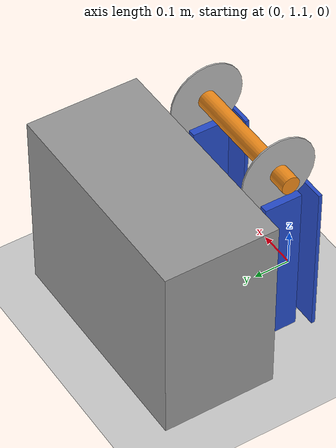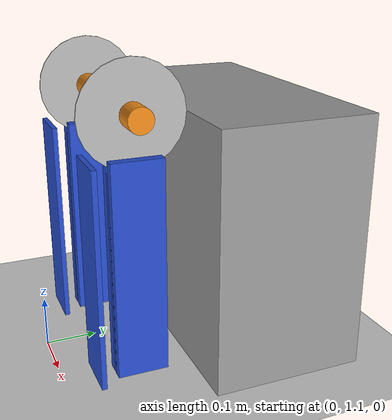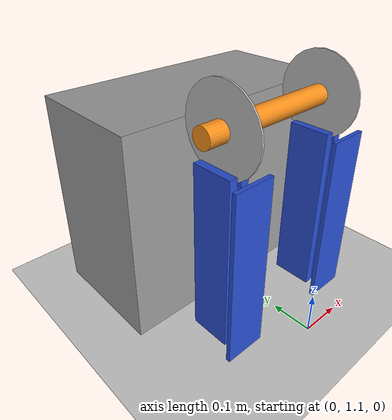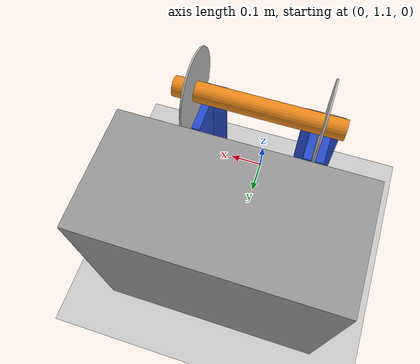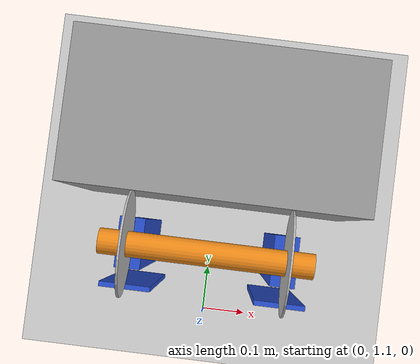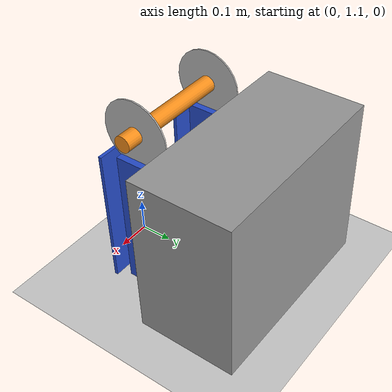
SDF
<?xml version="1.0" ?>
<sdf version="1.4">
  <world name="default">
    <include>
      <uri>model://ground_plane</uri>
    </include>
    <include>
      <uri>model://sun</uri>
    </include>

    <!-- Only one ROS interface plugin is required per world, as any other plugin can connect a Gazebo
         topic to a ROS topic (or vise versa). -->
    <plugin name="ros_interface_plugin" filename="librotors_gazebo_ros_interface_plugin.so"/>

    <spherical_coordinates>
      <surface_model>EARTH_WGS84</surface_model>
      <latitude_deg>47.3667</latitude_deg>
      <longitude_deg>8.5500</longitude_deg>
      <elevation>500.0</elevation>
      <heading_deg>0</heading_deg>
    </spherical_coordinates>
    <physics type='ode'>
      <ode>
        <solver>
          <type>quick</type>
          <iters>1500</iters>
          <sor>1.3</sor>
        </solver>
        <constraints>
          <cfm>0</cfm>
          <erp>0.2</erp>
          <contact_max_correcting_vel>100</contact_max_correcting_vel>
          <contact_surface_layer>0.001</contact_surface_layer>
        </constraints>
      </ode>
      <max_step_size>0.001</max_step_size>
      <real_time_factor>1</real_time_factor>
      <real_time_update_rate>1000</real_time_update_rate>
      <gravity>0 0 -9.8</gravity>
    </physics>

    <model name='unit_support'>
      <pose frame=''>0.151049 1.25 0.2 0 -0 1.57</pose>
      <link name='base_ll'>
      	<pose>0 0.014 0.01 0 0 0</pose>
    	<inertial>
    		<mass>100</mass>
    		<inertia>
    			<ixx>1.66667</ixx>
		        <ixy>0</ixy>
		        <ixz>0</ixz>
		        <iyy>1.66667</iyy>
		        <iyz>0</iyz>
		        <izz>1.66667</izz>
          	</inertia>
        </inertial>
        <collision name='collision'>
          <geometry>
            <box>
              <size>0.1 0.02 0.43</size>
            </box>
          </geometry>
        </collision>
        <visual name='visual'>
          <geometry>
            <box>
              <size>0.1 0.02 0.43</size>
            </box>
          </geometry>
          <material>
            <script>
              <name>Gazebo/Blue</name>
              <uri>file://media/materials/scripts/gazebo.material</uri>
            </script>
          </material>
        </visual>
      </link>
      <link name='base_lr'>
      	<pose>0 -0.015 0.01 0 0 0</pose>
    	<inertial>
    		<mass>100</mass>
    		<inertia>
    			<ixx>1.66667</ixx>
		        <ixy>0</ixy>
		        <ixz>0</ixz>
		        <iyy>1.66667</iyy>
		        <iyz>0</iyz>
		        <izz>1.66667</izz>
          	</inertia>
        </inertial>
        <collision name='collision'>
          <geometry>
            <box>
              <size>0.1 0.02 0.43</size>
            </box>
          </geometry>
        </collision>
        <visual name='visual'>
          <geometry>
            <box>
              <size>0.1 0.02 0.43</size>
            </box>
          </geometry>
          <material>
            <script>
              <name>Gazebo/Blue</name>
              <uri>file://media/materials/scripts/gazebo.material</uri>
            </script>
          </material>
        </visual>
      </link>
      <link name='base_lf'>
      	<pose>-0.085 0 0.01 0 0 0</pose>
    	<inertial>
    		<mass>100</mass>
    		<inertia>
    			<ixx>1.66667</ixx>
		        <ixy>0</ixy>
		        <ixz>0</ixz>
		        <iyy>1.66667</iyy>
		        <iyz>0</iyz>
		        <izz>1.66667</izz>
          	</inertia>
        </inertial>
        <collision name='collision'>
          <geometry>
            <box>
              <size>0.01 0.1 0.43</size>
            </box>
          </geometry>
        </collision>
        <visual name='visual'>
          <geometry>
            <box>
              <size>0.01 0.1 0.43</size>
            </box>
          </geometry>
          <material>
            <script>
              <name>Gazebo/Blue</name>
              <uri>file://media/materials/scripts/gazebo.material</uri>
            </script>
          </material>
        </visual>
      </link>
      <joint name='base_LR' type='fixed'>
      	<parent>link</parent>
      	<child>base_lr</child>
      </joint>
      <joint name='base_LF' type='fixed'>
      	<parent>link</parent>
      	<child>base_lf</child>
      </joint>
      <joint name='base_LL' type='fixed'>
      	<parent>link</parent>
      	<child>base_ll</child>
      </joint>
      <link name='link'>
        <inertial>
          <mass>100</mass>
          <inertia>
            <ixx>1.66667</ixx>
            <ixy>0</ixy>
            <ixz>0</ixz>
            <iyy>1.66667</iyy>
            <iyz>0</iyz>
            <izz>1.66667</izz>
          </inertia>
        </inertial>
        <collision name='collision'>
          <geometry>
            <box>
              <size>0.1 0.02 0.4</size>
            </box>
          </geometry>
          <max_contacts>10</max_contacts>
          <surface>
            <contact>
              <ode/>
            </contact>
            <bounce/>
            <friction>
              <torsional>
                <ode/>
              </torsional>
              <ode/>
            </friction>
          </surface>
        </collision>
        <visual name='visual'>
          <geometry>
            <box>
              <size>0.1 0.02 0.4</size>
            </box>
          </geometry>
          <material>
            <script>
              <name>Gazebo/Blue</name>
              <uri>file://media/materials/scripts/gazebo.material</uri>
            </script>
          </material>
        </visual>
        <self_collide>0</self_collide>
        <kinematic>0</kinematic>
      </link>
    </model>

    <model name='unit_support_clone'>
      <pose frame=''>-0.151049 1.25 0.2 0 -0 1.57</pose>
      <link name='base_rf'>
      	<pose>-0.085 0 0.01 0 0 0</pose>
    	<inertial>
    		<mass>100</mass>
    		<inertia>
    			<ixx>1.66667</ixx>
		        <ixy>0</ixy>
		        <ixz>0</ixz>
		        <iyy>1.66667</iyy>
		        <iyz>0</iyz>
		        <izz>1.66667</izz>
          	</inertia>
        </inertial>
        <collision name='collision'>
          <geometry>
            <box>
              <size>0.01 0.1 0.43</size>
            </box>
          </geometry>
        </collision>
        <visual name='visual'>
          <geometry>
            <box>
              <size>0.01 0.1 0.43</size>
            </box>
          </geometry>
          <material>
            <script>
              <name>Gazebo/Blue</name>
              <uri>file://media/materials/scripts/gazebo.material</uri>
            </script>
          </material>
        </visual>
      </link>
      <link name='base_rl'>
      	<pose>0 0.015 0.01 0 0 0</pose>
    	<inertial>
    		<mass>100</mass>
    		<inertia>
    			<ixx>1.66667</ixx>
		        <ixy>0</ixy>
		        <ixz>0</ixz>
		        <iyy>1.66667</iyy>
		        <iyz>0</iyz>
		        <izz>1.66667</izz>
          	</inertia>
        </inertial>
        <collision name='collision'>
          <geometry>
            <box>
              <size>0.1 0.02 0.43</size>
            </box>
          </geometry>
        </collision>
        <visual name='visual'>
          <geometry>
            <box>
              <size>0.1 0.02 0.43</size>
            </box>
          </geometry>
          <material>
            <script>
              <name>Gazebo/Blue</name>
              <uri>file://media/materials/scripts/gazebo.material</uri>
            </script>
          </material>
        </visual>
      </link>
      <link name='base_rr'>
      	<pose>0 -0.015 0.01 0 0 0</pose>
    	<inertial>
    		<mass>100</mass>
    		<inertia>
    			<ixx>1.66667</ixx>
		        <ixy>0</ixy>
		        <ixz>0</ixz>
		        <iyy>1.66667</iyy>
		        <iyz>0</iyz>
		        <izz>1.66667</izz>
          	</inertia>
        </inertial>
        <collision name='collision'>
          <geometry>
            <box>
              <size>0.1 0.02 0.43</size>
            </box>
          </geometry>
        </collision>
        <visual name='visual'>
          <geometry>
            <box>
              <size>0.1 0.02 0.43</size>
            </box>
          </geometry>
          <material>
            <script>
              <name>Gazebo/Blue</name>
              <uri>file://media/materials/scripts/gazebo.material</uri>
            </script>
          </material>
        </visual>
      </link>
      <joint name='base_RF' type='fixed'>
      	<parent>link</parent>
      	<child>base_rf</child>
      </joint>
      <joint name='base_RR' type='fixed'>
      	<parent>link</parent>
      	<child>base_rr</child>
      </joint>
      <joint name='base_RL' type='fixed'>
      	<parent>link</parent>
      	<child>base_rl</child>
      </joint>
      <link name='link'>
        <inertial>
          <mass>100</mass>
          <inertia>
            <ixx>1.66667</ixx>
            <ixy>0</ixy>
            <ixz>0</ixz>
            <iyy>1.66667</iyy>
            <iyz>0</iyz>
            <izz>1.66667</izz>
          </inertia>
        </inertial>
        <collision name='collision'>
          <geometry>
            <box>
              <size>0.1 0.02 0.4</size>
            </box>
          </geometry>
          <max_contacts>10</max_contacts>
          <surface>
            <contact>
              <ode/>
            </contact>
            <bounce/>
            <friction>
              <torsional>
                <ode/>
              </torsional>
              <ode/>
            </friction>
          </surface>
        </collision>
        <visual name='visual'>
          <geometry>
            <box>
              <size>0.1 0.02 0.4</size>
            </box>
          </geometry>
          <material>
            <script>
              <name>Gazebo/Blue</name>
              <uri>file://media/materials/scripts/gazebo.material</uri>
            </script>
          </material>
        </visual>
        <self_collide>0</self_collide>
        <kinematic>0</kinematic>
      </link>
    </model>

    <model name='unit_cylinder'>
      <pose frame=''>0 1.25 0.5 1.57 -0 1.57</pose>
      <link name='holder_1'>
        <pose>0 0 0.15 0 0 0</pose>
        <inertial>
        	<mass>0.5</mass>
        	<inertia>
        		<ixx>0.000004</ixx>
        		<ixy>0.0</ixy>
        		<ixz>0.0</ixz>
        		<iyy>0.000004</iyy>
        		<iyz>0.0</iyz>
        		<izz>0.00041866666</izz>
        	</inertia>
        </inertial>
    	<collision name='collision'>
    	  <geometry>
    	   <cylinder>
    	   	 <radius>0.1</radius>
    	   	 <length>0.004</length>
    	   </cylinder>
    	  </geometry>
    	</collision>
    	<visual name='visual_1'>
    	  <geometry>
    	    <cylinder>
    	      <radius>0.1</radius>
    	      <length>0.004</length>
    	    </cylinder>
    	  </geometry>
        </visual>
      </link>
      <link name='holder_2'>
        <pose>0 0 -0.15 0 0 0</pose>
        <inertial>
        	<mass>0.5</mass>
        	<inertia>
        		<ixx>0.000004</ixx>
        		<ixy>0.0</ixy>
        		<ixz>0.0</ixz>
        		<iyy>0.000004</iyy>
        		<iyz>0.0</iyz>
        		<izz>0.00041866666</izz>
        	</inertia>
        </inertial>
    	<collision name='collision2'>
    	  <geometry>
    	   <cylinder>
    	   	 <radius>0.1</radius>
    	   	 <length>0.004</length>
    	   </cylinder>
    	  </geometry>
    	</collision>
    	<visual name='visual_2'>
    	  <geometry>
    	    <cylinder>
    	      <radius>0.1</radius>
    	      <length>0.004</length>
    	    </cylinder>
    	  </geometry>
        </visual>
      </link>
      <joint name='first' type='fixed'>
      	<parent>link</parent>
      	<child>holder_1</child>
      	<pose>0 0 0.4 0 0 0</pose>
      </joint>
      <joint name='second' type='fixed'>
      	<parent>link</parent>
      	<child>holder_2</child>
      	<pose>0 0 -0.4 0 0 0</pose>
      </joint>
      <link name='link'>
        <inertial>
          <mass>1</mass>
          <inertia>
            <ixx>0.01347733333</ixx>
            <ixy>0</ixy>
            <ixz>0</ixz>
            <iyy>0.01347733333</iyy>
            <iyz>0</iyz>
            <izz>0.000288</izz>
          </inertia>
        </inertial>
        <collision name='collision'>
          <geometry>
            <cylinder>
              <radius>0.024</radius>
              <length>0.4</length>
            </cylinder>
          </geometry>
          <max_contacts>10</max_contacts>
          <surface>
            <contact>
              <ode/>
            </contact>
            <bounce/>
            <friction>
              <torsional>
                <ode/>
              </torsional>
              <ode/>
            </friction>
          </surface>
        </collision>
        <visual name='visual'>
          <geometry>
            <cylinder>
              <radius>0.024</radius>
              <length>0.4</length>
            </cylinder>
          </geometry>
          <material>
            <script>
              <name>Gazebo/Orange</name>
              <uri>file://media/materials/scripts/gazebo.material</uri>
            </script>
          </material>
        </visual>
        <self_collide>0</self_collide>
        <kinematic>0</kinematic>
      </link>
    </model>

    <model name='back_box'>
      <pose frame=''>0 1.5 0.25 0 -0 1.57</pose>
      <link name='link'>
        <inertial>
          <mass>100</mass>
          <inertia>
            <ixx>1.66667</ixx>
            <ixy>0</ixy>
            <ixz>0</ixz>
            <iyy>1.66667</iyy>
            <iyz>0</iyz>
            <izz>1.66667</izz>
          </inertia>
        </inertial>
        <collision name='collision'>
          <geometry>
            <box>
              <size>0.3 0.6 0.5</size>
            </box>
          </geometry>
          <max_contacts>10</max_contacts>
          <surface>
            <contact>
              <ode/>
            </contact>
            <bounce/>
            <friction>
              <torsional>
                <ode/>
              </torsional>
              <ode/>
            </friction>
          </surface>
        </collision>
        <visual name='visual'>
          <geometry>
            <box>
              <size>0.3 0.6 0.5</size>
            </box>
          </geometry>
          <material>
            <script>
              <name>Gazebo/Grey</name>
              <uri>file://media/materials/scripts/gazebo.material</uri>
            </script>
          </material>
        </visual>
        <self_collide>0</self_collide>
        <kinematic>0</kinematic>
      </link>
    </model>

  </world>
</sdf>
